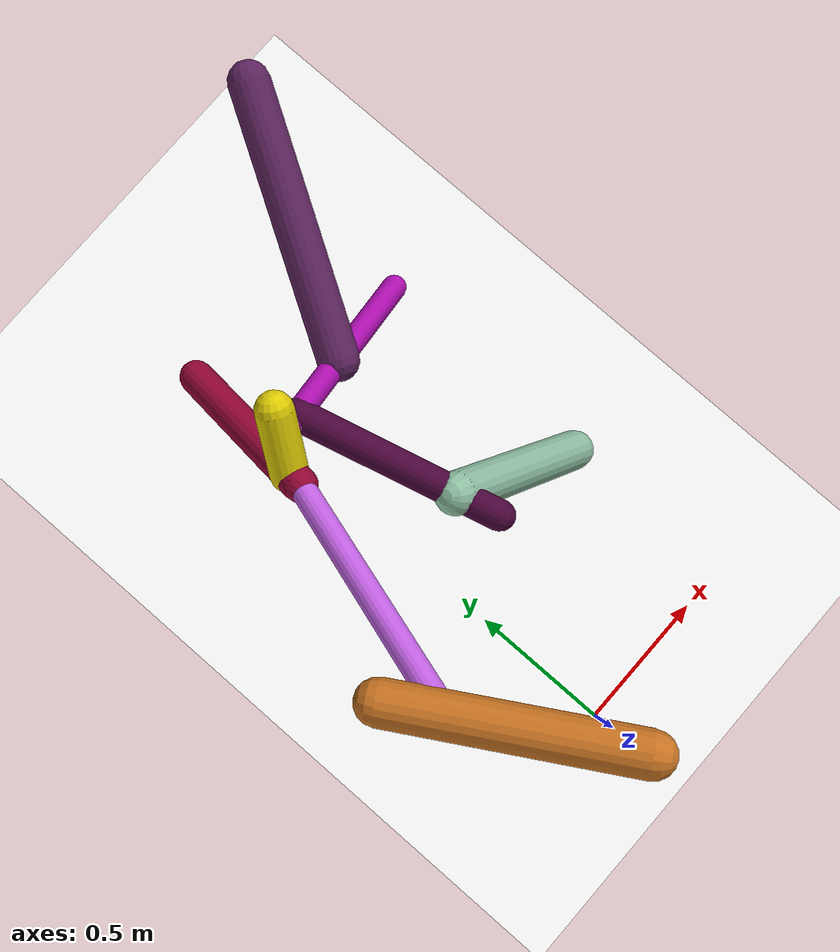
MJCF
<mujoco model="morphology">
  <option timestep="0.01"/>
  <default>
    <default class="/"/>
    <default class="0/"/>
    <default class="0/1/"/>
    <default class="0/1/2/"/>
    <default class="0/1/2/3/"/>
    <default class="0/1/2/3/4/"/>
    <default class="0/1/2/3/4/5/"/>
    <default class="0/1/2/3/4/6/"/>
    <default class="0/1/2/3/4/6/7/"/>
  </default>
  <asset>
    <texture name="texplane" type="2d" builtin="checker" rgb1="0.10000000000000001 0.20000000000000001 0.29999999999999999" rgb2="0.20000000000000001 0.29999999999999999 0.40000000000000002" width="300" height="300"/>
    <material name="MatPlane" class="/" texture="texplane" texrepeat="20 20" specular="1" shininess="1" reflectance="0.5"/>
  </asset>
  <worldbody>
    <light name="//unnamed_light_0" class="/" directional="true" pos="0 0 1.5" dir="0 0 -1.3" cutoff="100" exponent="1" diffuse="1 1 1" specular="0.10000000000000001 0.10000000000000001 0.10000000000000001"/>
    <geom name="ground" class="/" type="plane" size="15 15 0.5" material="MatPlane" rgba="1 1 1 1"/>
    <site name="body" class="/" size="9.9999999999999995e-07 9.9999999999999995e-07 9.9999999999999995e-07" pos="0 0 1.2979600191116334"/>
    <body pos="0 0 1.2979600191116334" name="0/">
      <freejoint name="0/"/>
      <geom name="0/geom" class="0/" type="capsule" contype="1" conaffinity="1" condim="3" size="0.066675345332636859" rgba="0.78713213150298289 0.45398121646394662 0.13381228141002477 1" friction="0.59999999999999998 0.10000000000000001 0.10000000000000001" fromto="0 0 0 -0.36292770425343052 0.6097595449481632 -0.077329367266574023"/>
      <site name="0/end0" class="0/" size="0.0050000000000000001" pos="-0.36292770425343052 0.6097595449481632 -0.077329367266574023"/>
      <site name="0/attach1" class="0/" size="9.9999999999999995e-07 9.9999999999999995e-07 9.9999999999999995e-07" pos="-0.2720190570968819 0.45702274730947406 -0.057959371310665427"/>
      <body pos="-0.2720190570968819 0.45702274730947406 -0.057959371310665427" name="0/1/">
        <joint name="0/1/joint/" class="0/" type="hinge" axis="0 0 1" limited="true" range="-35.063267536575573 35.063267536575573"/>
        <geom name="0/1/geom" class="0/1/" type="capsule" contype="1" conaffinity="1" condim="3" size="0.039355050457577992" rgba="0.76928605003164341 0.38611810286942949 0.9057505752141185 1" friction="0.59999999999999998 0.10000000000000001 0.10000000000000001" fromto="0 0 0 0.20362474436150235 0.7411874925768358 -0.42300835130869496"/>
        <site name="0/1/end1" class="0/1/" size="0.0050000000000000001" pos="0.20362474436150235 0.7411874925768358 -0.42300835130869496"/>
        <site name="0/1/attach2" class="0/1/" size="9.9999999999999995e-07 9.9999999999999995e-07 9.9999999999999995e-07" pos="0.20169907373370827 0.73417811368912234 -0.41900797915362614"/>
        <body pos="0.20169907373370827 0.73417811368912234 -0.41900797915362614" name="0/1/2/">
          <joint name="0/1/2/joint/" class="0/1/" type="hinge" axis="-8.3266726846886741e-17 0.49567302862324936 0.86850921048395069" limited="true" range="-59.092399515514657 59.092399515514657"/>
          <geom name="0/1/2/geom" class="0/1/2/" type="capsule" contype="1" conaffinity="1" condim="3" size="0.053952092721392772" rgba="0.5724158423435145 0.018469852513026241 0.20592435057747527 1" friction="0.59999999999999998 0.10000000000000001 0.10000000000000001" fromto="0 0 0 0.041557610888898644 0.50890421190036594 -0.26710027810530368"/>
          <site name="0/1/2/end2" class="0/1/2/" size="0.0050000000000000001" pos="0.041557610888898644 0.50890421190036594 -0.26710027810530368"/>
          <site name="0/1/2/attach3" class="0/1/2/" size="9.9999999999999995e-07 9.9999999999999995e-07 9.9999999999999995e-07" pos="0.004049839161846599 0.049593327501252851 -0.026029243338912354"/>
          <body pos="0.004049839161846599 0.049593327501252851 -0.026029243338912354" name="0/1/2/3/">
            <joint name="0/1/2/3/joint/" class="0/1/2/" type="hinge" axis="8.3266726846886741e-17 0.46473237118690458 0.88545119750949408" limited="true" range="-46.782663458258966 46.782663458258966"/>
            <geom name="0/1/2/3/geom" class="0/1/2/3/" type="capsule" contype="1" conaffinity="1" condim="3" size="0.059594687907635252" rgba="0.87228891117952889 0.79749782687149839 0.012272358901565306 1" friction="0.59999999999999998 0.10000000000000001 0.10000000000000001" fromto="0 0 0 0.10734763130604952 0.13511464040772725 0.13525271885961854"/>
            <site name="0/1/2/3/end3" class="0/1/2/3/" size="0.0050000000000000001" pos="0.10734763130604952 0.13511464040772725 0.13525271885961854"/>
            <site name="0/1/2/3/attach4" class="0/1/2/3/" size="9.9999999999999995e-07 9.9999999999999995e-07 9.9999999999999995e-07" pos="0.063238649832310548 0.079596236339881873 0.079677578561990592"/>
            <body pos="0.063238649832310548 0.079596236339881873 0.079677578561990592" name="0/1/2/3/4/">
              <joint name="0/1/2/3/4/joint/" class="0/1/2/3/" type="hinge" axis="5.5511151231257827e-17 -0.70746781317452889 0.70674556476998862" limited="true" range="-55.967690376664223 55.967690376664223"/>
              <geom name="0/1/2/3/4/geom" class="0/1/2/3/4/" type="capsule" contype="1" conaffinity="1" condim="3" size="0.038739125107696178" rgba="0.67668640932496904 0.04970245073151458 0.68786508040370098 1" friction="0.59999999999999998 0.10000000000000001 0.10000000000000001" fromto="0 0 0 0.59029514583048837 0.088350307551279483 -0.25638993144393252"/>
              <site name="0/1/2/3/4/end4" class="0/1/2/3/4/" size="0.0050000000000000001" pos="0.59029514583048837 0.088350307551279483 -0.25638993144393252"/>
              <site name="0/1/2/3/4/attach5" class="0/1/2/3/4/" size="9.9999999999999995e-07 9.9999999999999995e-07 9.9999999999999995e-07" pos="0.29022105222034661 0.043437794470508453 -0.12605517122739215"/>
              <body pos="0.29022105222034661 0.043437794470508453 -0.12605517122739215" name="0/1/2/3/4/5/">
                <joint name="0/1/2/3/4/5/joint/" class="0/1/2/3/4/" type="hinge" axis="-2.7755575615628914e-17 0.94544116211188145 0.32579289277781237" limited="true" range="-36.051159218030818 36.051159218030818"/>
                <geom name="0/1/2/3/4/5/geom" class="0/1/2/3/4/5/" type="capsule" contype="1" conaffinity="1" condim="3" size="0.065979780169168667" rgba="0.35931218449860047 0.1381122247805211 0.36589528527848802 1" friction="0.59999999999999998 0.10000000000000001 0.10000000000000001" fromto="0 0 0 0.44095517732796763 0.72892232043085525 0.15887850668879389"/>
                <site name="0/1/2/3/4/5/end5" class="0/1/2/3/4/5/" size="0.0050000000000000001" pos="0.44095517732796763 0.72892232043085525 0.15887850668879389"/>
              </body>
              <site name="0/1/2/3/4/attach6" class="0/1/2/3/4/" size="9.9999999999999995e-07 9.9999999999999995e-07 9.9999999999999995e-07" pos="0.082835518315102025 0.012398108930766191 -0.035978938691849711"/>
              <body pos="0.082835518315102025 0.012398108930766191 -0.035978938691849711" name="0/1/2/3/4/6/">
                <joint name="0/1/2/3/4/6/joint/" class="0/1/2/3/4/" type="hinge" axis="-0.41746052457670751 0.29604639195483323 -0.85911771267426773" limited="true" range="-59.195255022879252 59.195255022879252"/>
                <geom name="0/1/2/3/4/6/geom" class="0/1/2/3/4/6/" type="capsule" contype="1" conaffinity="1" condim="3" size="0.049143104603321434" rgba="0.28728345420261536 0.020081280920550948 0.22438169449351453 1" friction="0.59999999999999998 0.10000000000000001 0.10000000000000001" fromto="0 0 0 0.17548297444744054 -0.6408799702550112 -0.14270568581723508"/>
                <site name="0/1/2/3/4/6/end6" class="0/1/2/3/4/6/" size="0.0050000000000000001" pos="0.17548297444744054 -0.6408799702550112 -0.14270568581723508"/>
                <site name="0/1/2/3/4/6/attach7" class="0/1/2/3/4/6/" size="9.9999999999999995e-07 9.9999999999999995e-07 9.9999999999999995e-07" pos="0.13651853522497603 -0.49857825278910656 -0.1110191530397137"/>
                <body pos="0.13651853522497603 -0.49857825278910656 -0.1110191530397137" name="0/1/2/3/4/6/7/">
                  <geom name="0/1/2/3/4/6/7/geom" class="0/1/2/3/4/6/7/" type="capsule" contype="1" conaffinity="1" condim="3" size="0.069061647636586523" rgba="0.55838468865624957 0.74893241544969591 0.63711181208836654 1" friction="0.59999999999999998 0.10000000000000001 0.10000000000000001" fromto="0 0 0 0.42706030656051541 -0.18107244277833545 -0.62764296448403267"/>
                  <site name="0/1/2/3/4/6/7/end7" class="0/1/2/3/4/6/7/" size="0.0050000000000000001" pos="0.42706030656051541 -0.18107244277833545 -0.62764296448403267"/>
                </body>
              </body>
            </body>
          </body>
        </body>
      </body>
      <camera name="0/iso" class="0/" mode="trackcom" pos="-2.2999999999999998 -2.2999999999999998 1" xyaxes="0.45000000000000001 -0.45000000000000001 0 0.29999999999999999 0.14999999999999999 0.93999999999999995"/>
    </body>
  </worldbody>
  <actuator>
    <motor name="0/1/motor" class="0/1/" ctrllimited="true" ctrlrange="-1 1" gear="61" joint="0/1/joint/"/>
    <motor name="0/1/2/motor" class="0/1/2/" ctrllimited="true" ctrlrange="-1 1" gear="74" joint="0/1/2/joint/"/>
    <motor name="0/1/2/3/motor" class="0/1/2/3/" ctrllimited="true" ctrlrange="-1 1" gear="93" joint="0/1/2/3/joint/"/>
    <motor name="0/1/2/3/4/motor" class="0/1/2/3/4/" ctrllimited="true" ctrlrange="-1 1" gear="73" joint="0/1/2/3/4/joint/"/>
    <motor name="0/1/2/3/4/5/motor" class="0/1/2/3/4/5/" ctrllimited="true" ctrlrange="-1 1" gear="78" joint="0/1/2/3/4/5/joint/"/>
    <motor name="0/1/2/3/4/6/motor" class="0/1/2/3/4/6/" ctrllimited="true" ctrlrange="-1 1" gear="78" joint="0/1/2/3/4/6/joint/"/>
  </actuator>
  <sensor>
    <subtreelinvel name="velocity" body="0/"/>
  </sensor>
</mujoco>
